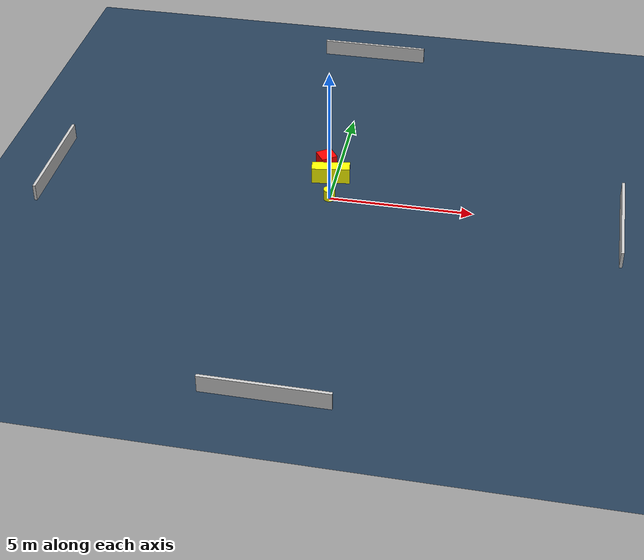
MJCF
<?xml version="1.0" ?>
<mujoco model="generated_environment">
  <option timestep="0.01" integrator="RK4" cone="elliptic"/>
  <default>
    <geom density="1"/>
  </default>
  <asset>
    <texture builtin="gradient" height="3072" name="skybox" rgb1="0.3 0.5 0.7" rgb2="0 0 0" type="skybox" width="512"/>
    <texture builtin="checker" height="300" name="groundplane" rgb1="0.2 0.3 0.4" rgb2="0.1 0.2 0.3" type="2d" width="300"/>
    <material name="groundplane" reflectance="0.2" texrepeat="5 5" texture="groundplane"/>
  </asset>
  <worldbody>
    <light dir="0 0 -1" directional="true" pos="0 0 1.5"/>
    <geom condim="3" friction="0.5 0.005 0.001" material="groundplane" name="floor" pos="0 0 0" size="0 0 0.05" type="plane"/>
    <body name="walls">
      <geom name="wall_1" condim="4" pos="-10.0 0.0 0.3" rgba="0.800000011920929 0.800000011920929 0.800000011920929 1.0" size="0.05 2.0 0.3" type="box"/>
      <geom name="wall_2" condim="4" pos="10.0 0.0 0.3" rgba="0.800000011920929 0.800000011920929 0.800000011920929 1.0" size="0.05 2.0 0.3" type="box"/>
      <geom name="wall_3" condim="4" pos="0.0 -10.0 0.3" rgba="0.800000011920929 0.800000011920929 0.800000011920929 1.0" size="2.0 0.05 0.3" type="box"/>
      <geom name="wall_4" condim="4" pos="0.0 10.0 0.3" rgba="0.800000011920929 0.800000011920929 0.800000011920929 1.0" size="2.0 0.05 0.3" type="box"/>
    </body>
    <body name="robot">
      <joint name="joint_x" type="slide" pos="0 0 0" axis="1 0 0"/>
      <joint name="joint_y" type="slide" pos="0 0 0" axis="0 1 0"/>
      <geom name="robot" type="cylinder" pos="0.0 0.0 0.2" size="0.2 0.2 0.0" mass="5.0" friction="1.0 0.005 0.0001" condim="4" rgba="1.0 1.0 0.0 1.0"/>
    </body>
    <body name="obstacle_1_movable">
      <geom name="obstacle_1_movable" condim="4" pos="-0.1569007074833213 1.127746760672238 0.3" euler="0 0 98.85796007612551" friction="0.0 0.005 0.001" rgba="1.0 1.0 0.0 1.0" size="0.2231670166763255 0.6715152324763833 0.3" type="box" mass="0.1"/>
      <joint type="free"/>
    </body>
    <body name="obstacle_2_static">
      <geom name="obstacle_2_static" condim="4" pos="-0.44108548976819273 1.8157963676864526 0.3" euler="0 0 34.68739580219528" friction="0.0 0.005 0.001" rgba="1.0 0.0 0.0 1.0" size="0.29248723549934125 0.28463446214727683 0.3" type="box"/>
    </body>
  </worldbody>
  <actuator>
    <motor name="actuator_x" joint="joint_x" gear="1" ctrlrange="-1 1"/>
    <motor name="actuator_y" joint="joint_y" gear="1" ctrlrange="-1 1"/>
  </actuator>
</mujoco>
